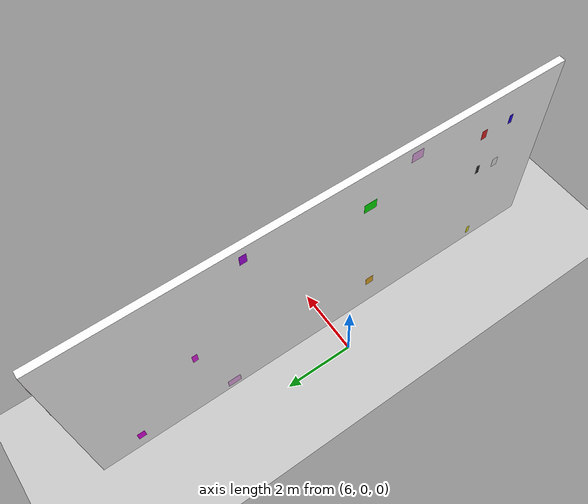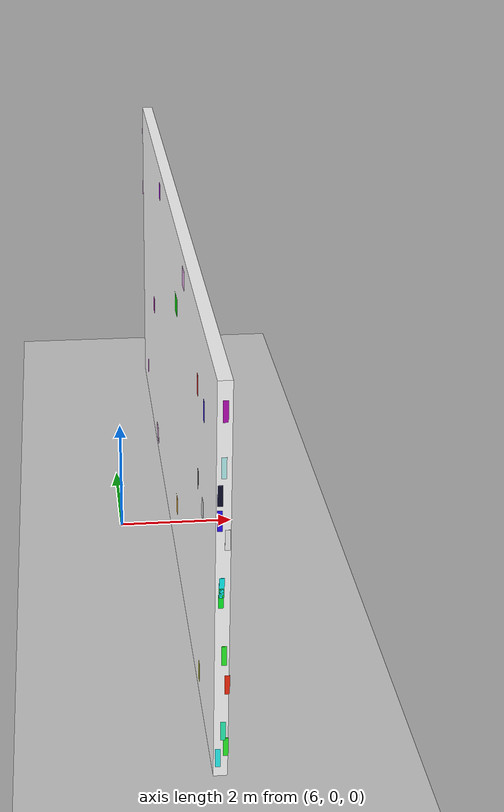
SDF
<sdf version="1.9">
 <world name="default">
  <model name="ground_plane">
   <static>true</static>
   <link name="link">
    <collision name="collision">
     <geometry><plane><normal>0 0 1</normal><size>1 1</size></plane></geometry>
    </collision>
    <visual name="visual">
     <geometry><plane><normal>0 0 1</normal><size>500 500</size></plane></geometry>
     <material>
      <ambient>0.8 0.8 0.8 1</ambient>
      <diffuse>0.8 0.8 0.8 1</diffuse>
      <specular>0.8 0.8 0.8 1</specular>
     </material>
    </visual>
    <inertial>
     <mass>1</mass>
     <inertia><ixx>1</ixx><ixy>0</ixy><ixz>0</ixz><iyy>1</iyy><iyz>0</iyz><izz>1</izz></inertia>
    </inertial>
   </link>
  </model>
  <model name="wall_east">
   <static>true</static>
   <pose>7 0 3 0 0 0</pose>
   <link name="structure">
    <collision name="collision"><geometry><box><size>0.2 14.2 6</size></box></geometry></collision>
    <visual name="surface">
     <geometry><box><size>0.2 14.2 6</size></box></geometry>
     <material>
      <ambient>1 1 1 1</ambient>
      <diffuse>1 1 1 1</diffuse>
      <pbr>
       <metal>
        <albedo_map>model://warehouse_textures/materials/textures/wall_east.png</albedo_map>
        <metalness>0</metalness>
        <roughness>1</roughness>
       </metal>
      </pbr>
     </material>
    </visual>
    <visual name="feature_0_0">
     <pose>-0.10200000000000001 3.9178357231538863 -0.23942794925580735 0 0 0</pose>
     <geometry><box><size>0.004 0.14189132276210312 0.3</size></box></geometry>
     <material><ambient>0.95 0.15 0.95 1</ambient><diffuse>0.95 0.15 0.95 1</diffuse></material>
    </visual>
    <visual name="feature_0_1">
     <pose>-0.10200000000000001 2.248544532041607 2.597786841049812 0 0 0</pose>
     <geometry><box><size>0.004 0.185155461414554 0.3</size></box></geometry>
     <material><ambient>0.7 0.04 0.95 1</ambient><diffuse>0.7 0.04 0.95 1</diffuse></material>
    </visual>
    <visual name="feature_0_2">
     <pose>-0.10200000000000001 -5.159789778848193 -2.6235959311520105 0 0 0</pose>
     <geometry><box><size>0.004 0.10792435688912158 0.3</size></box></geometry>
     <material><ambient>0.95 0.95 0.15 1</ambient><diffuse>0.95 0.95 0.15 1</diffuse></material>
    </visual>
    <visual name="feature_0_3">
     <pose>-0.10200000000000001 -1.1770367301604088 1.7315249909807306 0 0 0</pose>
     <geometry><box><size>0.004 0.3598786949216656 0.3</size></box></geometry>
     <material><ambient>0.04 0.95 0.04 1</ambient><diffuse>0.04 0.95 0.04 1</diffuse></material>
    </visual>
    <visual name="feature_0_4">
     <pose>-0.10200000000000001 -5.601512003683719 1.886318854560181 0 0 0</pose>
     <geometry><box><size>0.004 0.11264673118302052 0.3</size></box></geometry>
     <material><ambient>0.15 0.04 0.95 1</ambient><diffuse>0.15 0.04 0.95 1</diffuse></material>
    </visual>
    <visual name="feature_0_5">
     <pose>-0.10200000000000001 -2.4866485925921693 2.643267252773019 0 0 0</pose>
     <geometry><box><size>0.004 0.3289600401103557 0.3</size></box></geometry>
     <material><ambient>0.95 0.7 0.95 1</ambient><diffuse>0.95 0.7 0.95 1</diffuse></material>
    </visual>
    <visual name="feature_0_6">
     <pose>-0.10200000000000001 5.863397269165957 -2.3947577388200374 0 0 0</pose>
     <geometry><box><size>0.004 0.2095861165336038 0.3</size></box></geometry>
     <material><ambient>0.95 0.04 0.95 1</ambient><diffuse>0.95 0.04 0.95 1</diffuse></material>
    </visual>
    <visual name="feature_0_7">
     <pose>-0.10200000000000001 3.1347513125314146 -2.6983757329268823 0 0 0</pose>
     <geometry><box><size>0.004 0.38176930140246534 0.3</size></box></geometry>
     <material><ambient>0.95 0.7 0.95 1</ambient><diffuse>0.95 0.7 0.95 1</diffuse></material>
    </visual>
    <visual name="feature_0_8">
     <pose>-0.10200000000000001 -5.470990840412469 0.3186491958921458 0 0 0</pose>
     <geometry><box><size>0.004 0.18813824413297156 0.3</size></box></geometry>
     <material><ambient>0.95 0.95 0.95 1</ambient><diffuse>0.95 0.95 0.95 1</diffuse></material>
    </visual>
    <visual name="feature_0_9">
     <pose>-0.10200000000000001 -4.830854888757945 0.4499981496416776 0 0 0</pose>
     <geometry><box><size>0.004 0.10737702104862838 0.3</size></box></geometry>
     <material><ambient>0.15 0.15 0.15 1</ambient><diffuse>0.15 0.15 0.15 1</diffuse></material>
    </visual>
    <visual name="feature_0_10">
     <pose>-0.10200000000000001 -4.715888096258629 1.8814669264913046 0 0 0</pose>
     <geometry><box><size>0.004 0.1619836867270691 0.3</size></box></geometry>
     <material><ambient>0.95 0.15 0.15 1</ambient><diffuse>0.95 0.15 0.15 1</diffuse></material>
    </visual>
    <visual name="feature_0_11">
     <pose>-0.10200000000000001 -1.3653618908001155 -1.880458354740901 0 0 0</pose>
     <geometry><box><size>0.004 0.2429496896069118 0.3</size></box></geometry>
     <material><ambient>0.95 0.7 0.15 1</ambient><diffuse>0.95 0.7 0.15 1</diffuse></material>
    </visual>
    <visual name="feature_1_0">
     <pose>0.10200000000000001 -3.215207384766206 1.3177846946540628 0 0 0</pose>
     <geometry><box><size>0.004 0.21061888112744842 0.3</size></box></geometry>
     <material><ambient>0.7 0.04 0.95 1</ambient><diffuse>0.7 0.04 0.95 1</diffuse></material>
    </visual>
    <visual name="feature_1_1">
     <pose>0.10200000000000001 -5.045410455985666 2.2063860207376136 0 0 0</pose>
     <geometry><box><size>0.004 0.27513421637657054 0.3</size></box></geometry>
     <material><ambient>0.04 0.04 0.15 1</ambient><diffuse>0.04 0.04 0.15 1</diffuse></material>
    </visual>
    <visual name="feature_1_2">
     <pose>0.10200000000000001 -3.553419336964374 -2.1259498442138915 0 0 0</pose>
     <geometry><box><size>0.004 0.35003354443500534 0.3</size></box></geometry>
     <material><ambient>0.95 0.7 0.04 1</ambient><diffuse>0.95 0.7 0.04 1</diffuse></material>
    </visual>
    <visual name="feature_1_3">
     <pose>0.10200000000000001 2.790867838502046 0.03241816002108777 0 0 0</pose>
     <geometry><box><size>0.004 0.30349363258738443 0.3</size></box></geometry>
     <material><ambient>0.7 0.04 0.15 1</ambient><diffuse>0.7 0.04 0.15 1</diffuse></material>
    </visual>
    <visual name="feature_1_4">
     <pose>0.10200000000000001 -2.93062404953227 -2.057010024470475 0 0 0</pose>
     <geometry><box><size>0.004 0.3728433332919928 0.3</size></box></geometry>
     <material><ambient>0.15 0.15 0.15 1</ambient><diffuse>0.15 0.15 0.15 1</diffuse></material>
    </visual>
    <visual name="feature_1_5">
     <pose>0.10200000000000001 -1.694841203794203 0.07388358552824181 0 0 0</pose>
     <geometry><box><size>0.004 0.2664336709840587 0.3</size></box></geometry>
     <material><ambient>0.04 0.7 0.15 1</ambient><diffuse>0.04 0.7 0.15 1</diffuse></material>
    </visual>
    <visual name="feature_1_6">
     <pose>0.10200000000000001 3.6500567521704825 -1.770663625432134 0 0 0</pose>
     <geometry><box><size>0.004 0.17514672766197945 0.3</size></box></geometry>
     <material><ambient>0.04 0.04 0.95 1</ambient><diffuse>0.04 0.04 0.95 1</diffuse></material>
    </visual>
    <visual name="feature_1_7">
     <pose>0.10200000000000001 -3.0994695822400278 1.547897880401421 0 0 0</pose>
     <geometry><box><size>0.004 0.1285859055925925 0.3</size></box></geometry>
     <material><ambient>0.7 0.7 0.15 1</ambient><diffuse>0.7 0.7 0.15 1</diffuse></material>
    </visual>
    <visual name="feature_1_8">
     <pose>0.10200000000000001 -3.303723234747799 0.43109630609461114 0 0 0</pose>
     <geometry><box><size>0.004 0.10858935532779604 0.3</size></box></geometry>
     <material><ambient>0.95 0.04 0.04 1</ambient><diffuse>0.95 0.04 0.04 1</diffuse></material>
    </visual>
    <visual name="feature_1_9">
     <pose>0.10200000000000001 0.6269025367458987 2.0851139675306385 0 0 0</pose>
     <geometry><box><size>0.004 0.37629751187536964 0.3</size></box></geometry>
     <material><ambient>0.04 0.7 0.04 1</ambient><diffuse>0.04 0.7 0.04 1</diffuse></material>
    </visual>
    <visual name="feature_1_10">
     <pose>0.10200000000000001 -2.6976495073365756 2.515020477868731 0 0 0</pose>
     <geometry><box><size>0.004 0.11310534109812008 0.3</size></box></geometry>
     <material><ambient>0.7 0.7 0.95 1</ambient><diffuse>0.7 0.7 0.95 1</diffuse></material>
    </visual>
    <visual name="feature_1_11">
     <pose>0.10200000000000001 -0.7274036900313892 -2.2844395361407632 0 0 0</pose>
     <geometry><box><size>0.004 0.3145879897438352 0.3</size></box></geometry>
     <material><ambient>0.15 0.95 0.15 1</ambient><diffuse>0.15 0.95 0.15 1</diffuse></material>
    </visual>
    <visual name="feature_2_0">
     <pose>0.030321591510859933 -7.101999999999999 -2.2461099457503035 0 0 0</pose>
     <geometry><box><size>0.06999999999999999 0.004 0.3</size></box></geometry>
     <material><ambient>0.15 0.95 0.7 1</ambient><diffuse>0.15 0.95 0.7 1</diffuse></material>
    </visual>
    <visual name="feature_2_1">
     <pose>0.031053473420672537 -7.101999999999999 -1.020780035921137 0 0 0</pose>
     <geometry><box><size>0.06999999999999999 0.004 0.3</size></box></geometry>
     <material><ambient>0.15 0.95 0.15 1</ambient><diffuse>0.15 0.95 0.15 1</diffuse></material>
    </visual>
    <visual name="feature_2_2">
     <pose>0.010723683748403073 -7.101999999999999 2.5800491672008876 0 0 0</pose>
     <geometry><box><size>0.06999999999999999 0.004 0.3</size></box></geometry>
     <material><ambient>0.7 0.04 0.7 1</ambient><diffuse>0.7 0.04 0.7 1</diffuse></material>
    </visual>
    <visual name="feature_2_3">
     <pose>-0.047490979648707736 -7.101999999999999 1.4016530091235104 0 0 0</pose>
     <geometry><box><size>0.06999999999999999 0.004 0.3</size></box></geometry>
     <material><ambient>0.04 0.04 0.15 1</ambient><diffuse>0.04 0.04 0.15 1</diffuse></material>
    </visual>
    <visual name="feature_2_4">
     <pose>0.07786138472605127 -7.101999999999999 -1.4874329970574864 0 0 0</pose>
     <geometry><box><size>0.06999999999999999 0.004 0.3</size></box></geometry>
     <material><ambient>0.95 0.15 0.04 1</ambient><diffuse>0.95 0.15 0.04 1</diffuse></material>
    </visual>
    <visual name="feature_2_5">
     <pose>-0.018443908203377532 -7.101999999999999 -0.11889163192938623 0 0 0</pose>
     <geometry><box><size>0.06999999999999999 0.004 0.3</size></box></geometry>
     <material><ambient>0.04 0.95 0.15 1</ambient><diffuse>0.04 0.95 0.15 1</diffuse></material>
    </visual>
    <visual name="feature_2_6">
     <pose>-0.0020178627598053944 -7.101999999999999 1.7966251486583662 0 0 0</pose>
     <geometry><box><size>0.06999999999999999 0.004 0.3</size></box></geometry>
     <material><ambient>0.7 0.95 0.95 1</ambient><diffuse>0.7 0.95 0.95 1</diffuse></material>
    </visual>
    <visual name="feature_2_7">
     <pose>0.0705698958574366 -7.101999999999999 -2.5121000949316046 0 0 0</pose>
     <geometry><box><size>0.06999999999999999 0.004 0.3</size></box></geometry>
     <material><ambient>0.15 0.95 0.15 1</ambient><diffuse>0.15 0.95 0.15 1</diffuse></material>
    </visual>
    <visual name="feature_2_8">
     <pose>-0.037521912363465554 -7.101999999999999 -2.6973855140228866 0 0 0</pose>
     <geometry><box><size>0.06999999999999999 0.004 0.3</size></box></geometry>
     <material><ambient>0.15 0.95 0.95 1</ambient><diffuse>0.15 0.95 0.95 1</diffuse></material>
    </visual>
    <visual name="feature_2_9">
     <pose>0.05610463733537026 -7.101999999999999 0.7547431508411848 0 0 0</pose>
     <geometry><box><size>0.06999999999999999 0.004 0.3</size></box></geometry>
     <material><ambient>0.95 0.95 0.95 1</ambient><diffuse>0.95 0.95 0.95 1</diffuse></material>
    </visual>
    <visual name="feature_2_10">
     <pose>-0.04852550980525617 -7.101999999999999 1.0366485904182379 0 0 0</pose>
     <geometry><box><size>0.06999999999999999 0.004 0.3</size></box></geometry>
     <material><ambient>0.15 0.04 0.95 1</ambient><diffuse>0.15 0.04 0.95 1</diffuse></material>
    </visual>
    <visual name="feature_2_11">
     <pose>-0.013362612163153709 -7.101999999999999 0.03682141249163928 0 0 0</pose>
     <geometry><box><size>0.06999999999999999 0.004 0.3</size></box></geometry>
     <material><ambient>0.04 0.95 0.95 1</ambient><diffuse>0.04 0.95 0.95 1</diffuse></material>
    </visual>
    <visual name="feature_3_0">
     <pose>-0.030997780367746433 7.101999999999999 2.661931016307885 0 0 0</pose>
     <geometry><box><size>0.06999999999999999 0.004 0.3</size></box></geometry>
     <material><ambient>0.15 0.7 0.04 1</ambient><diffuse>0.15 0.7 0.04 1</diffuse></material>
    </visual>
    <visual name="feature_3_1">
     <pose>0.07141941224342348 7.101999999999999 -0.7770742994680593 0 0 0</pose>
     <geometry><box><size>0.06999999999999999 0.004 0.3</size></box></geometry>
     <material><ambient>0.04 0.04 0.95 1</ambient><diffuse>0.04 0.04 0.95 1</diffuse></material>
    </visual>
    <visual name="feature_3_2">
     <pose>-0.0768313318849458 7.101999999999999 1.2603403348973399 0 0 0</pose>
     <geometry><box><size>0.06999999999999999 0.004 0.3</size></box></geometry>
     <material><ambient>0.95 0.7 0.95 1</ambient><diffuse>0.95 0.7 0.95 1</diffuse></material>
    </visual>
    <visual name="feature_3_3">
     <pose>-0.07376981931180335 7.101999999999999 2.405054611475088 0 0 0</pose>
     <geometry><box><size>0.06999999999999999 0.004 0.3</size></box></geometry>
     <material><ambient>0.95 0.7 0.95 1</ambient><diffuse>0.95 0.7 0.95 1</diffuse></material>
    </visual>
    <visual name="feature_3_4">
     <pose>0.05405259903448399 7.101999999999999 1.1098649010972563 0 0 0</pose>
     <geometry><box><size>0.06999999999999999 0.004 0.3</size></box></geometry>
     <material><ambient>0.04 0.15 0.95 1</ambient><diffuse>0.04 0.15 0.95 1</diffuse></material>
    </visual>
    <visual name="feature_3_5">
     <pose>0.05269651745658745 7.101999999999999 0.6320913630091982 0 0 0</pose>
     <geometry><box><size>0.06999999999999999 0.004 0.3</size></box></geometry>
     <material><ambient>0.7 0.15 0.04 1</ambient><diffuse>0.7 0.15 0.04 1</diffuse></material>
    </visual>
    <visual name="feature_3_6">
     <pose>-0.02850205260600079 7.101999999999999 1.108306751776046 0 0 0</pose>
     <geometry><box><size>0.06999999999999999 0.004 0.3</size></box></geometry>
     <material><ambient>0.7 0.95 0.04 1</ambient><diffuse>0.7 0.95 0.04 1</diffuse></material>
    </visual>
    <visual name="feature_3_7">
     <pose>0.03851074568325473 7.101999999999999 0.5397746193927548 0 0 0</pose>
     <geometry><box><size>0.06999999999999999 0.004 0.3</size></box></geometry>
     <material><ambient>0.7 0.04 0.04 1</ambient><diffuse>0.7 0.04 0.04 1</diffuse></material>
    </visual>
    <visual name="feature_3_8">
     <pose>-0.046063226050189046 7.101999999999999 2.2045703281883897 0 0 0</pose>
     <geometry><box><size>0.06999999999999999 0.004 0.3</size></box></geometry>
     <material><ambient>0.04 0.15 0.95 1</ambient><diffuse>0.04 0.15 0.95 1</diffuse></material>
    </visual>
    <visual name="feature_3_9">
     <pose>0.039816054668243256 7.101999999999999 -1.9539020883463913 0 0 0</pose>
     <geometry><box><size>0.06999999999999999 0.004 0.3</size></box></geometry>
     <material><ambient>0.04 0.7 0.95 1</ambient><diffuse>0.04 0.7 0.95 1</diffuse></material>
    </visual>
    <visual name="feature_3_10">
     <pose>0.003942239389446975 7.101999999999999 1.3023531107784683 0 0 0</pose>
     <geometry><box><size>0.06999999999999999 0.004 0.3</size></box></geometry>
     <material><ambient>0.04 0.7 0.04 1</ambient><diffuse>0.04 0.7 0.04 1</diffuse></material>
    </visual>
    <visual name="feature_3_11">
     <pose>0.041140976275479677 7.101999999999999 0.03912102621192526 0 0 0</pose>
     <geometry><box><size>0.06999999999999999 0.004 0.3</size></box></geometry>
     <material><ambient>0.7 0.95 0.15 1</ambient><diffuse>0.7 0.95 0.15 1</diffuse></material>
    </visual>
   </link>
  </model>
 </world>
</sdf>
